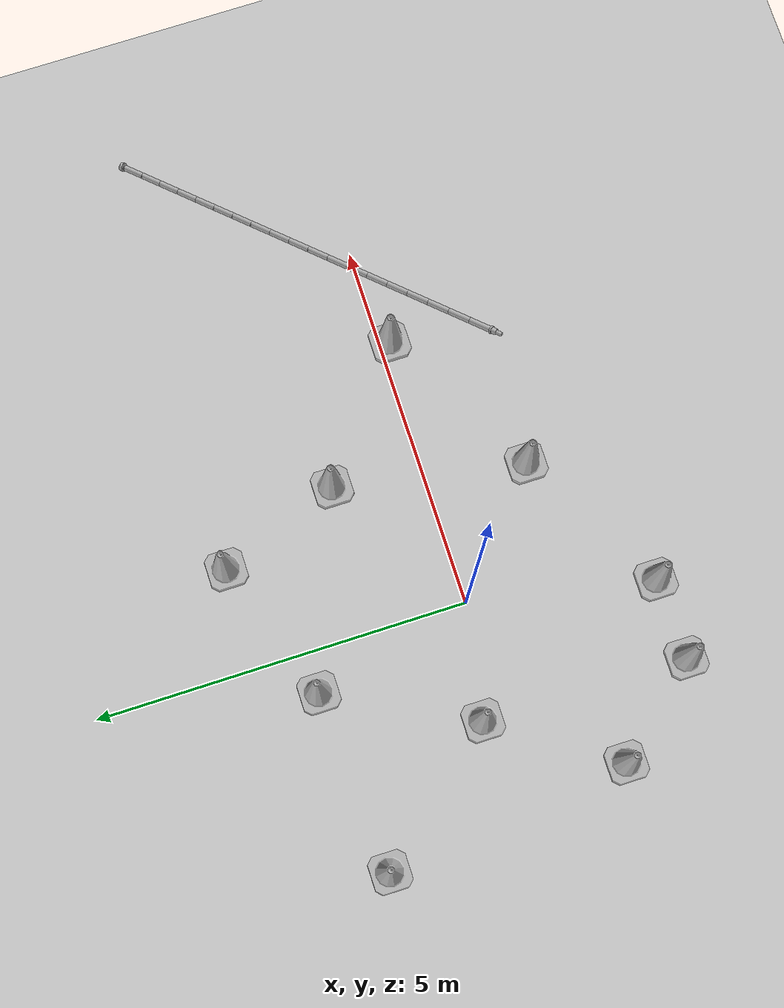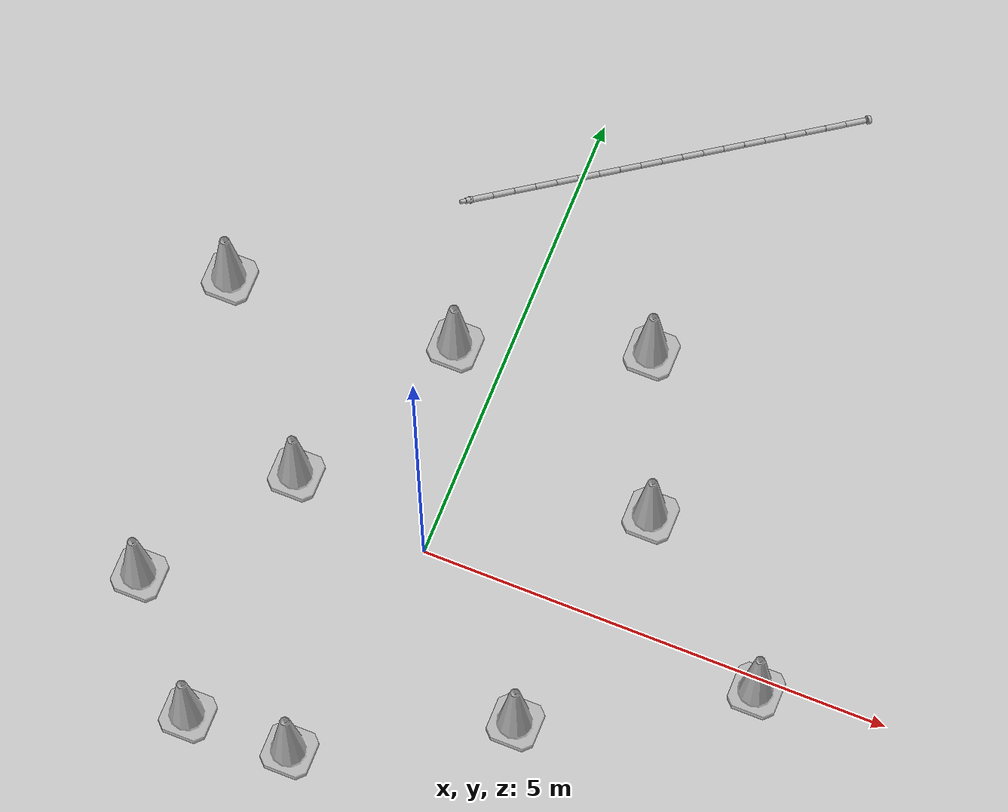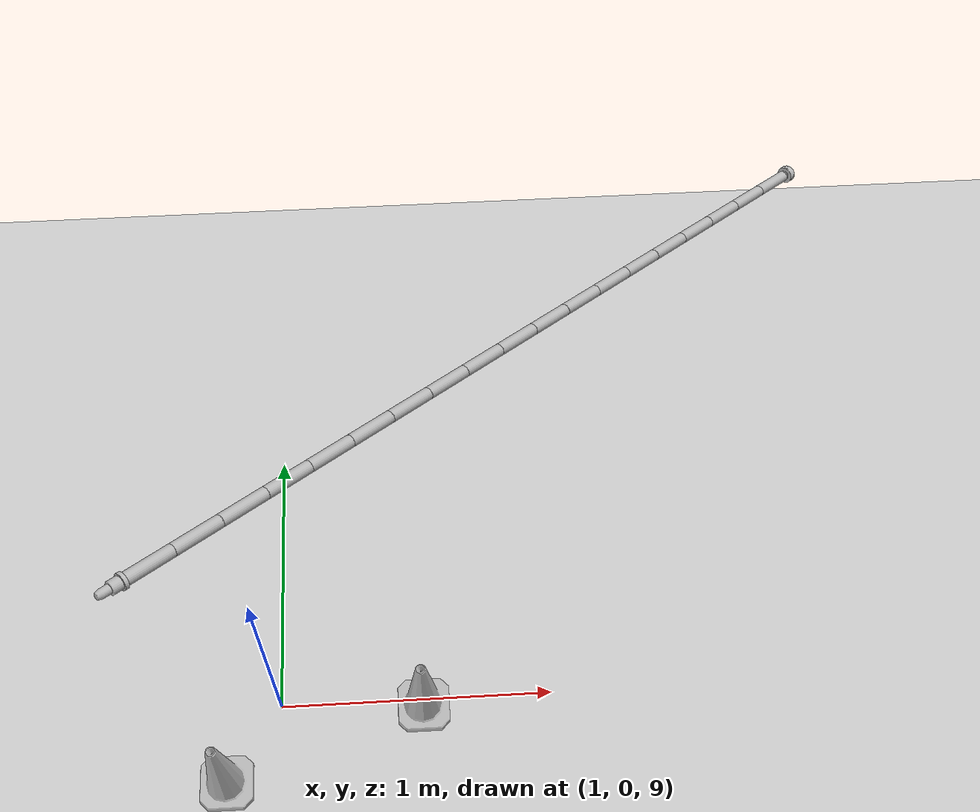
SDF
<sdf version="1.7">
 <world name="default">
  <light name="sun" type="directional">
   <pose>0 0 10 0 -0 0</pose>
   <diffuse>0.8 0.8 0.8 1</diffuse>
   <specular>0.2 0.2 0.2 1</specular>
   <attenuation>
    <range>1000</range>
    <constant>0.9</constant>
    <linear>0.01</linear>
    <quadratic>0.001</quadratic>
   </attenuation>
   <direction>-0.5 0.1 -0.9</direction>
   <spot><inner_angle>0</inner_angle><outer_angle>0</outer_angle><falloff>0</falloff></spot>
  </light>
  <model name="ground_plane">
   <static>1</static>
   <link name="link">
    <collision name="collision">
     <geometry><plane><normal>0 0 1</normal><size>100 100</size></plane></geometry>
     <surface>
      <contact><collide_bitmask>65535</collide_bitmask></contact>
      <friction><ode><mu>100</mu><mu2>50</mu2></ode></friction>
     </surface>
    </collision>
    <visual name="visual">
     <cast_shadows>0</cast_shadows>
     <geometry><plane><normal>0 0 1</normal><size>100 100</size></plane></geometry>
     <material>
      <script><uri>file://media/materials/scripts/gazebo.material</uri><name>Gazebo/Grey</name></script>
     </material>
    </visual>
   </link>
  </model>
  <gravity>0 0 -9.8</gravity>
  <magnetic_field>6e-06 2.3e-05 -4.2e-05</magnetic_field>
  <atmosphere type="adiabatic"/>
  <physics type="ode">
   <max_step_size>0.001</max_step_size>
   <real_time_factor>1</real_time_factor>
   <real_time_update_rate>1000</real_time_update_rate>
  </physics>
  <scene><ambient>0.4 0.4 0.4 1</ambient><background>0.7 0.7 0.7 1</background><shadows>1</shadows></scene>
  <spherical_coordinates>
   <surface_model>EARTH_WGS84</surface_model>
   <latitude_deg>0</latitude_deg>
   <longitude_deg>0</longitude_deg>
   <elevation>0</elevation>
   <heading_deg>0</heading_deg>
  </spherical_coordinates>
  <model name="fire_hose_long">
   <pose>0.523019 0.062878 10 1.23283 0.318678 0.720963</pose>
   <joint name="joint_01_world" type="revolute">
    <child>nozzle</child>
    <parent>world</parent>
    <axis>
     <xyz expressed_in="__model__">0.5 1 0.2</xyz>
     <dynamics>
      <damping>10</damping>
      <friction>0</friction>
      <spring_reference>0</spring_reference>
      <spring_stiffness>0</spring_stiffness>
     </dynamics>
     <limit><lower>-1e+16</lower><upper>1e+16</upper></limit>
    </axis>
   </joint>
   <link name="nozzle">
    <inertial>
     <mass>0.1</mass>
     <inertia><ixx>0.01</ixx><ixy>0</ixy><ixz>0</ixz><iyy>0.01</iyy><iyz>0</iyz><izz>0.01</izz></inertia>
    </inertial>
    <collision name="nozzle_collision">
     <geometry>
      <mesh><scale>0.00254 0.00254 0.00254</scale><uri>model://fire_hose_long/meshes/nozzle.stl</uri></mesh>
     </geometry>
    </collision>
    <visual name="nozzle_vis">
     <geometry>
      <mesh><scale>0.00254 0.00254 0.00254</scale><uri>model://fire_hose_long/meshes/nozzle.stl</uri></mesh>
     </geometry>
    </visual>
   </link>
   <link name="sphere_01">
    <gravity>0</gravity>
    <pose>0.1 0 0 0 -0 0</pose>
    <inertial>
     <mass>0.1</mass>
     <inertia><ixx>0.01</ixx><ixy>0</ixy><ixz>0</ixz><iyy>0.01</iyy><iyz>0</iyz><izz>0.01</izz></inertia>
    </inertial>
    <collision name="sphere_01_collision"><geometry><sphere><radius>0.025</radius></sphere></geometry></collision>
    <visual name="sphere_01_vis"><geometry><sphere><radius>0.025</radius></sphere></geometry></visual>
   </link>
   <joint name="joint_01_1" type="revolute">
    <child>sphere_01</child>
    <parent>nozzle</parent>
    <axis>
     <xyz expressed_in="__model__">0 0 1</xyz>
     <limit><lower>-0.7</lower><upper>0.7</upper></limit>
     <dynamics>
      <damping>10</damping>
      <friction>0</friction>
      <spring_reference>0</spring_reference>
      <spring_stiffness>0</spring_stiffness>
     </dynamics>
    </axis>
   </joint>
   <link name="link_01">
    <gravity>0</gravity>
    <pose>0.1 0 0 0 -0 0</pose>
    <inertial>
     <mass>0.1</mass>
     <inertia><ixx>0.01</ixx><ixy>0</ixy><ixz>0</ixz><iyy>0.01</iyy><iyz>0</iyz><izz>0.01</izz></inertia>
    </inertial>
    <collision name="link_01_collision">
     <pose>0.1 0 0 0 1.57079 0</pose>
     <geometry><cylinder><length>0.2</length><radius>0.025</radius></cylinder></geometry>
    </collision>
    <visual name="link_01_vis">
     <pose>0.1 0 0 0 1.57079 0</pose>
     <geometry><cylinder><length>0.2</length><radius>0.025</radius></cylinder></geometry>
    </visual>
   </link>
   <joint name="joint_01_2" type="revolute">
    <child>link_01</child>
    <parent>sphere_01</parent>
    <axis>
     <xyz expressed_in="__model__">0 1 0</xyz>
     <limit><lower>-0.7</lower><upper>0.7</upper></limit>
     <dynamics>
      <damping>10</damping>
      <friction>0</friction>
      <spring_reference>0</spring_reference>
      <spring_stiffness>0</spring_stiffness>
     </dynamics>
    </axis>
   </joint>
   <link name="sphere_02">
    <gravity>0</gravity>
    <pose>0.3 0 0 0 -0 0</pose>
    <inertial>
     <mass>0.1</mass>
     <inertia><ixx>0.01</ixx><ixy>0</ixy><ixz>0</ixz><iyy>0.01</iyy><iyz>0</iyz><izz>0.01</izz></inertia>
    </inertial>
    <collision name="sphere_02_collision"><geometry><sphere><radius>0.025</radius></sphere></geometry></collision>
    <visual name="sphere_02_vis"><geometry><sphere><radius>0.025</radius></sphere></geometry></visual>
   </link>
   <joint name="joint_02_1" type="revolute">
    <child>sphere_02</child>
    <parent>link_01</parent>
    <axis>
     <xyz expressed_in="__model__">0 0 1</xyz>
     <limit><lower>-0.7</lower><upper>0.7</upper></limit>
     <dynamics>
      <damping>10</damping>
      <friction>0</friction>
      <spring_reference>0</spring_reference>
      <spring_stiffness>0</spring_stiffness>
     </dynamics>
    </axis>
   </joint>
   <link name="link_02">
    <gravity>0</gravity>
    <pose>0.3 0 0 0 -0 0</pose>
    <inertial>
     <mass>0.1</mass>
     <inertia><ixx>0.01</ixx><ixy>0</ixy><ixz>0</ixz><iyy>0.01</iyy><iyz>0</iyz><izz>0.01</izz></inertia>
    </inertial>
    <collision name="link_02_collision">
     <pose>0.1 0 0 0 1.57079 0</pose>
     <geometry><cylinder><length>0.2</length><radius>0.025</radius></cylinder></geometry>
    </collision>
    <visual name="link_02_vis">
     <pose>0.1 0 0 0 1.57079 0</pose>
     <geometry><cylinder><length>0.2</length><radius>0.025</radius></cylinder></geometry>
    </visual>
   </link>
   <joint name="joint_02_2" type="revolute">
    <child>link_02</child>
    <parent>sphere_02</parent>
    <axis>
     <xyz expressed_in="__model__">0 1 0</xyz>
     <limit><lower>-0.7</lower><upper>0.7</upper></limit>
     <dynamics>
      <damping>10</damping>
      <friction>0</friction>
      <spring_reference>0</spring_reference>
      <spring_stiffness>0</spring_stiffness>
     </dynamics>
    </axis>
   </joint>
   <link name="sphere_03">
    <gravity>0</gravity>
    <pose>0.5 0 0 0 -0 0</pose>
    <inertial>
     <mass>0.1</mass>
     <inertia><ixx>0.01</ixx><ixy>0</ixy><ixz>0</ixz><iyy>0.01</iyy><iyz>0</iyz><izz>0.01</izz></inertia>
    </inertial>
    <collision name="sphere_03_collision"><geometry><sphere><radius>0.025</radius></sphere></geometry></collision>
    <visual name="sphere_03_vis"><geometry><sphere><radius>0.025</radius></sphere></geometry></visual>
   </link>
   <joint name="joint_03_1" type="revolute">
    <child>sphere_03</child>
    <parent>link_02</parent>
    <axis>
     <xyz expressed_in="__model__">0 0 1</xyz>
     <limit><lower>-0.7</lower><upper>0.7</upper></limit>
     <dynamics>
      <damping>10</damping>
      <friction>0</friction>
      <spring_reference>0</spring_reference>
      <spring_stiffness>0</spring_stiffness>
     </dynamics>
    </axis>
   </joint>
   <link name="link_03">
    <gravity>0</gravity>
    <pose>0.5 0 0 0 -0 0</pose>
    <inertial>
     <mass>0.1</mass>
     <inertia><ixx>0.01</ixx><ixy>0</ixy><ixz>0</ixz><iyy>0.01</iyy><iyz>0</iyz><izz>0.01</izz></inertia>
    </inertial>
    <collision name="link_03_collision">
     <pose>0.1 0 0 0 1.57079 0</pose>
     <geometry><cylinder><length>0.2</length><radius>0.025</radius></cylinder></geometry>
    </collision>
    <visual name="link_03_vis">
     <pose>0.1 0 0 0 1.57079 0</pose>
     <geometry><cylinder><length>0.2</length><radius>0.025</radius></cylinder></geometry>
    </visual>
   </link>
   <joint name="joint_03_2" type="revolute">
    <child>link_03</child>
    <parent>sphere_03</parent>
    <axis>
     <xyz expressed_in="__model__">0 1 0</xyz>
     <limit><lower>-0.7</lower><upper>0.7</upper></limit>
     <dynamics>
      <damping>10</damping>
      <friction>0</friction>
      <spring_reference>0</spring_reference>
      <spring_stiffness>0</spring_stiffness>
     </dynamics>
    </axis>
   </joint>
   <link name="sphere_04">
    <gravity>0</gravity>
    <pose>0.7 0 0 0 -0 0</pose>
    <inertial>
     <mass>0.1</mass>
     <inertia><ixx>0.01</ixx><ixy>0</ixy><ixz>0</ixz><iyy>0.01</iyy><iyz>0</iyz><izz>0.01</izz></inertia>
    </inertial>
    <collision name="sphere_04_collision"><geometry><sphere><radius>0.025</radius></sphere></geometry></collision>
    <visual name="sphere_04_vis"><geometry><sphere><radius>0.025</radius></sphere></geometry></visual>
   </link>
   <joint name="joint_04_1" type="revolute">
    <child>sphere_04</child>
    <parent>link_03</parent>
    <axis>
     <xyz expressed_in="__model__">0 0 1</xyz>
     <limit><lower>-0.7</lower><upper>0.7</upper></limit>
     <dynamics>
      <damping>10</damping>
      <friction>0</friction>
      <spring_reference>0</spring_reference>
      <spring_stiffness>0</spring_stiffness>
     </dynamics>
    </axis>
   </joint>
   <link name="link_04">
    <gravity>0</gravity>
    <pose>0.7 0 0 0 -0 0</pose>
    <inertial>
     <mass>0.1</mass>
     <inertia><ixx>0.01</ixx><ixy>0</ixy><ixz>0</ixz><iyy>0.01</iyy><iyz>0</iyz><izz>0.01</izz></inertia>
    </inertial>
    <collision name="link_04_collision">
     <pose>0.1 0 0 0 1.57079 0</pose>
     <geometry><cylinder><length>0.2</length><radius>0.025</radius></cylinder></geometry>
    </collision>
    <visual name="link_04_vis">
     <pose>0.1 0 0 0 1.57079 0</pose>
     <geometry><cylinder><length>0.2</length><radius>0.025</radius></cylinder></geometry>
    </visual>
   </link>
   <joint name="joint_04_2" type="revolute">
    <child>link_04</child>
    <parent>sphere_04</parent>
    <axis>
     <xyz expressed_in="__model__">0 1 0</xyz>
     <limit><lower>-0.7</lower><upper>0.7</upper></limit>
     <dynamics>
      <damping>10</damping>
      <friction>0</friction>
      <spring_reference>0</spring_reference>
      <spring_stiffness>0</spring_stiffness>
     </dynamics>
    </axis>
   </joint>
   <link name="sphere_05">
    <gravity>0</gravity>
    <pose>0.9 0 0 0 -0 0</pose>
    <inertial>
     <mass>0.1</mass>
     <inertia><ixx>0.01</ixx><ixy>0</ixy><ixz>0</ixz><iyy>0.01</iyy><iyz>0</iyz><izz>0.01</izz></inertia>
    </inertial>
    <collision name="sphere_05_collision"><geometry><sphere><radius>0.025</radius></sphere></geometry></collision>
    <visual name="sphere_05_vis"><geometry><sphere><radius>0.025</radius></sphere></geometry></visual>
   </link>
   <joint name="joint_05_1" type="revolute">
    <child>sphere_05</child>
    <parent>link_04</parent>
    <axis>
     <xyz expressed_in="__model__">0 0 1</xyz>
     <limit><lower>-0.7</lower><upper>0.7</upper></limit>
     <dynamics>
      <damping>10</damping>
      <friction>0</friction>
      <spring_reference>0</spring_reference>
      <spring_stiffness>0</spring_stiffness>
     </dynamics>
    </axis>
   </joint>
   <link name="link_05">
    <gravity>0</gravity>
    <pose>0.9 0 0 0 -0 0</pose>
    <inertial>
     <mass>0.1</mass>
     <inertia><ixx>0.01</ixx><ixy>0</ixy><ixz>0</ixz><iyy>0.01</iyy><iyz>0</iyz><izz>0.01</izz></inertia>
    </inertial>
    <collision name="link_05_collision">
     <pose>0.1 0 0 0 1.57079 0</pose>
     <geometry><cylinder><length>0.2</length><radius>0.025</radius></cylinder></geometry>
    </collision>
    <visual name="link_05_vis">
     <pose>0.1 0 0 0 1.57079 0</pose>
     <geometry><cylinder><length>0.2</length><radius>0.025</radius></cylinder></geometry>
    </visual>
   </link>
   <joint name="joint_05_2" type="revolute">
    <child>link_05</child>
    <parent>sphere_05</parent>
    <axis>
     <xyz expressed_in="__model__">0 1 0</xyz>
     <limit><lower>-0.7</lower><upper>0.7</upper></limit>
     <dynamics>
      <damping>10</damping>
      <friction>0</friction>
      <spring_reference>0</spring_reference>
      <spring_stiffness>0</spring_stiffness>
     </dynamics>
    </axis>
   </joint>
   <link name="sphere_06">
    <gravity>0</gravity>
    <pose>1.1 0 0 0 -0 0</pose>
    <inertial>
     <mass>0.1</mass>
     <inertia><ixx>0.01</ixx><ixy>0</ixy><ixz>0</ixz><iyy>0.01</iyy><iyz>0</iyz><izz>0.01</izz></inertia>
    </inertial>
    <collision name="sphere_06_collision"><geometry><sphere><radius>0.025</radius></sphere></geometry></collision>
    <visual name="sphere_06_vis"><geometry><sphere><radius>0.025</radius></sphere></geometry></visual>
   </link>
   <joint name="joint_06_1" type="revolute">
    <child>sphere_06</child>
    <parent>link_05</parent>
    <axis>
     <xyz expressed_in="__model__">0 0 1</xyz>
     <limit><lower>-0.7</lower><upper>0.7</upper></limit>
     <dynamics>
      <damping>10</damping>
      <friction>0</friction>
      <spring_reference>0</spring_reference>
      <spring_stiffness>0</spring_stiffness>
     </dynamics>
    </axis>
   </joint>
   <link name="link_06">
    <gravity>0</gravity>
    <pose>1.1 0 0 0 -0 0</pose>
    <inertial>
     <mass>0.1</mass>
     <inertia><ixx>0.01</ixx><ixy>0</ixy><ixz>0</ixz><iyy>0.01</iyy><iyz>0</iyz><izz>0.01</izz></inertia>
    </inertial>
    <collision name="link_06_collision">
     <pose>0.1 0 0 0 1.57079 0</pose>
     <geometry><cylinder><length>0.2</length><radius>0.025</radius></cylinder></geometry>
    </collision>
    <visual name="link_06_vis">
     <pose>0.1 0 0 0 1.57079 0</pose>
     <geometry><cylinder><length>0.2</length><radius>0.025</radius></cylinder></geometry>
    </visual>
   </link>
   <joint name="joint_06_2" type="revolute">
    <child>link_06</child>
    <parent>sphere_06</parent>
    <axis>
     <xyz expressed_in="__model__">0 1 0</xyz>
     <limit><lower>-0.7</lower><upper>0.7</upper></limit>
     <dynamics>
      <damping>10</damping>
      <friction>0</friction>
      <spring_reference>0</spring_reference>
      <spring_stiffness>0</spring_stiffness>
     </dynamics>
    </axis>
   </joint>
   <link name="sphere_07">
    <gravity>0</gravity>
    <pose>1.3 0 0 0 -0 0</pose>
    <inertial>
     <mass>0.1</mass>
     <inertia><ixx>0.01</ixx><ixy>0</ixy><ixz>0</ixz><iyy>0.01</iyy><iyz>0</iyz><izz>0.01</izz></inertia>
    </inertial>
    <collision name="sphere_07_collision"><geometry><sphere><radius>0.025</radius></sphere></geometry></collision>
    <visual name="sphere_07_vis"><geometry><sphere><radius>0.025</radius></sphere></geometry></visual>
   </link>
   <joint name="joint_07_1" type="revolute">
    <child>sphere_07</child>
    <parent>link_06</parent>
    <axis>
     <xyz expressed_in="__model__">0 0 1</xyz>
     <limit><lower>-0.7</lower><upper>0.7</upper></limit>
     <dynamics>
      <damping>10</damping>
      <friction>0</friction>
      <spring_reference>0</spring_reference>
      <spring_stiffness>0</spring_stiffness>
     </dynamics>
    </axis>
   </joint>
   <link name="link_07">
    <gravity>0</gravity>
    <pose>1.3 0 0 0 -0 0</pose>
    <inertial>
     <mass>0.1</mass>
     <inertia><ixx>0.01</ixx><ixy>0</ixy><ixz>0</ixz><iyy>0.01</iyy><iyz>0</iyz><izz>0.01</izz></inertia>
    </inertial>
    <collision name="link_07_collision">
     <pose>0.1 0 0 0 1.57079 0</pose>
     <geometry><cylinder><length>0.2</length><radius>0.025</radius></cylinder></geometry>
    </collision>
    <visual name="link_07_vis">
     <pose>0.1 0 0 0 1.57079 0</pose>
     <geometry><cylinder><length>0.2</length><radius>0.025</radius></cylinder></geometry>
    </visual>
   </link>
   <joint name="joint_07_2" type="revolute">
    <child>link_07</child>
    <parent>sphere_07</parent>
    <axis>
     <xyz expressed_in="__model__">0 1 0</xyz>
     <limit><lower>-0.7</lower><upper>0.7</upper></limit>
     <dynamics>
      <damping>10</damping>
      <friction>0</friction>
      <spring_reference>0</spring_reference>
      <spring_stiffness>0</spring_stiffness>
     </dynamics>
    </axis>
   </joint>
   <link name="sphere_08">
    <gravity>0</gravity>
    <pose>1.5 0 0 0 -0 0</pose>
    <inertial>
     <mass>0.1</mass>
     <inertia><ixx>0.01</ixx><ixy>0</ixy><ixz>0</ixz><iyy>0.01</iyy><iyz>0</iyz><izz>0.01</izz></inertia>
    </inertial>
    <collision name="sphere_08_collision"><geometry><sphere><radius>0.025</radius></sphere></geometry></collision>
    <visual name="sphere_08_vis"><geometry><sphere><radius>0.025</radius></sphere></geometry></visual>
   </link>
   <joint name="joint_08_1" type="revolute">
    <child>sphere_08</child>
    <parent>link_07</parent>
    <axis>
     <xyz expressed_in="__model__">0 0 1</xyz>
     <limit><lower>-0.7</lower><upper>0.7</upper></limit>
     <dynamics>
      <damping>10</damping>
      <friction>0</friction>
      <spring_reference>0</spring_reference>
      <spring_stiffness>0</spring_stiffness>
     </dynamics>
    </axis>
   </joint>
   <link name="link_08">
    <gravity>0</gravity>
    <pose>1.5 0 0 0 -0 0</pose>
    <inertial>
     <mass>0.1</mass>
     <inertia><ixx>0.01</ixx><ixy>0</ixy><ixz>0</ixz><iyy>0.01</iyy><iyz>0</iyz><izz>0.01</izz></inertia>
    </inertial>
    <collision name="link_08_collision">
     <pose>0.1 0 0 0 1.57079 0</pose>
     <geometry><cylinder><length>0.2</length><radius>0.025</radius></cylinder></geometry>
    </collision>
    <visual name="link_08_vis">
     <pose>0.1 0 0 0 1.57079 0</pose>
     <geometry><cylinder><length>0.2</length><radius>0.025</radius></cylinder></geometry>
    </visual>
   </link>
   <joint name="joint_08_2" type="revolute">
    <child>link_08</child>
    <parent>sphere_08</parent>
    <axis>
     <xyz expressed_in="__model__">0 1 0</xyz>
     <limit><lower>-0.7</lower><upper>0.7</upper></limit>
     <dynamics>
      <damping>10</damping>
      <friction>0</friction>
      <spring_reference>0</spring_reference>
      <spring_stiffness>0</spring_stiffness>
     </dynamics>
    </axis>
   </joint>
   <link name="sphere_09">
    <gravity>0</gravity>
    <pose>1.7 0 0 0 -0 0</pose>
    <inertial>
     <mass>0.1</mass>
     <inertia><ixx>0.01</ixx><ixy>0</ixy><ixz>0</ixz><iyy>0.01</iyy><iyz>0</iyz><izz>0.01</izz></inertia>
    </inertial>
    <collision name="sphere_09_collision"><geometry><sphere><radius>0.025</radius></sphere></geometry></collision>
    <visual name="sphere_09_vis"><geometry><sphere><radius>0.025</radius></sphere></geometry></visual>
   </link>
   <joint name="joint_09_1" type="revolute">
    <child>sphere_09</child>
    <parent>link_08</parent>
    <axis>
     <xyz expressed_in="__model__">0 0 1</xyz>
     <limit><lower>-0.7</lower><upper>0.7</upper></limit>
     <dynamics>
      <damping>10</damping>
      <friction>0</friction>
      <spring_reference>0</spring_reference>
      <spring_stiffness>0</spring_stiffness>
     </dynamics>
    </axis>
   </joint>
   <link name="link_09">
    <gravity>0</gravity>
    <pose>1.7 0 0 0 -0 0</pose>
    <inertial>
     <mass>0.1</mass>
     <inertia><ixx>0.01</ixx><ixy>0</ixy><ixz>0</ixz><iyy>0.01</iyy><iyz>0</iyz><izz>0.01</izz></inertia>
    </inertial>
    <collision name="link_09_collision">
     <pose>0.1 0 0 0 1.57079 0</pose>
     <geometry><cylinder><length>0.2</length><radius>0.025</radius></cylinder></geometry>
    </collision>
    <visual name="link_09_vis">
     <pose>0.1 0 0 0 1.57079 0</pose>
     <geometry><cylinder><length>0.2</length><radius>0.025</radius></cylinder></geometry>
    </visual>
   </link>
   <joint name="joint_09_2" type="revolute">
    <child>link_09</child>
    <parent>sphere_09</parent>
    <axis>
     <xyz expressed_in="__model__">0 1 0</xyz>
     <limit><lower>-0.7</lower><upper>0.7</upper></limit>
     <dynamics>
      <damping>10</damping>
      <friction>0</friction>
      <spring_reference>0</spring_reference>
      <spring_stiffness>0</spring_stiffness>
     </dynamics>
    </axis>
   </joint>
   <link name="sphere_10">
    <gravity>0</gravity>
    <pose>1.9 0 0 0 -0 0</pose>
    <inertial>
     <mass>0.1</mass>
     <inertia><ixx>0.01</ixx><ixy>0</ixy><ixz>0</ixz><iyy>0.01</iyy><iyz>0</iyz><izz>0.01</izz></inertia>
    </inertial>
    <collision name="sphere_10_collision"><geometry><sphere><radius>0.025</radius></sphere></geometry></collision>
    <visual name="sphere_10_vis"><geometry><sphere><radius>0.025</radius></sphere></geometry></visual>
   </link>
   <joint name="joint_10_1" type="revolute">
    <child>sphere_10</child>
    <parent>link_09</parent>
    <axis>
     <xyz expressed_in="__model__">0 0 1</xyz>
     <limit><lower>-0.7</lower><upper>0.7</upper></limit>
     <dynamics>
      <damping>10</damping>
      <friction>0</friction>
      <spring_reference>0</spring_reference>
      <spring_stiffness>0</spring_stiffness>
     </dynamics>
    </axis>
   </joint>
   <link name="link_10">
    <gravity>0</gravity>
    <pose>1.9 0 0 0 -0 0</pose>
    <inertial>
     <mass>0.1</mass>
     <inertia><ixx>0.01</ixx><ixy>0</ixy><ixz>0</ixz><iyy>0.01</iyy><iyz>0</iyz><izz>0.01</izz></inertia>
    </inertial>
    <collision name="link_10_collision">
     <pose>0.1 0 0 0 1.57079 0</pose>
     <geometry><cylinder><length>0.2</length><radius>0.025</radius></cylinder></geometry>
    </collision>
    <visual name="link_10_vis">
     <pose>0.1 0 0 0 1.57079 0</pose>
     <geometry><cylinder><length>0.2</length><radius>0.025</radius></cylinder></geometry>
    </visual>
   </link>
   <joint name="joint_10_2" type="revolute">
    <child>link_10</child>
    <parent>sphere_10</parent>
    <axis>
     <xyz expressed_in="__model__">0 1 0</xyz>
     <limit><lower>-0.7</lower><upper>0.7</upper></limit>
     <dynamics>
      <damping>10</damping>
      <friction>0</friction>
      <spring_reference>0</spring_reference>
      <spring_stiffness>0</spring_stiffness>
     </dynamics>
    </axis>
   </joint>
   <link name="sphere_11">
    <gravity>0</gravity>
    <pose>2.1 0 0 0 -0 0</pose>
    <inertial>
     <mass>0.1</mass>
     <inertia><ixx>0.01</ixx><ixy>0</ixy><ixz>0</ixz><iyy>0.01</iyy><iyz>0</iyz><izz>0.01</izz></inertia>
    </inertial>
    <collision name="sphere_11_collision"><geometry><sphere><radius>0.025</radius></sphere></geometry></collision>
    <visual name="sphere_11_vis"><geometry><sphere><radius>0.025</radius></sphere></geometry></visual>
   </link>
   <joint name="joint_11_1" type="revolute">
    <child>sphere_11</child>
    <parent>link_10</parent>
    <axis>
     <xyz expressed_in="__model__">0 0 1</xyz>
     <limit><lower>-0.7</lower><upper>0.7</upper></limit>
     <dynamics>
      <damping>10</damping>
      <friction>0</friction>
      <spring_reference>0</spring_reference>
      <spring_stiffness>0</spring_stiffness>
     </dynamics>
    </axis>
   </joint>
   <link name="link_11">
    <gravity>0</gravity>
    <pose>2.1 0 0 0 -0 0</pose>
    <inertial>
     <mass>0.1</mass>
     <inertia><ixx>0.01</ixx><ixy>0</ixy><ixz>0</ixz><iyy>0.01</iyy><iyz>0</iyz><izz>0.01</izz></inertia>
    </inertial>
    <collision name="link_11_collision">
     <pose>0.1 0 0 0 1.57079 0</pose>
     <geometry><cylinder><length>0.2</length><radius>0.025</radius></cylinder></geometry>
    </collision>
    <visual name="link_11_vis">
     <pose>0.1 0 0 0 1.57079 0</pose>
     <geometry><cylinder><length>0.2</length><radius>0.025</radius></cylinder></geometry>
    </visual>
   </link>
   <joint name="joint_11_2" type="revolute">
    <child>link_11</child>
    <parent>sphere_11</parent>
    <axis>
     <xyz expressed_in="__model__">0 1 0</xyz>
     <limit><lower>-0.7</lower><upper>0.7</upper></limit>
     <dynamics>
      <damping>10</damping>
      <friction>0</friction>
      <spring_reference>0</spring_reference>
      <spring_stiffness>0</spring_stiffness>
     </dynamics>
    </axis>
   </joint>
   <link name="sphere_12">
    <gravity>0</gravity>
    <pose>2.3 0 0 0 -0 0</pose>
    <inertial>
     <mass>0.1</mass>
     <inertia><ixx>0.01</ixx><ixy>0</ixy><ixz>0</ixz><iyy>0.01</iyy><iyz>0</iyz><izz>0.01</izz></inertia>
    </inertial>
    <collision name="sphere_12_collision"><geometry><sphere><radius>0.025</radius></sphere></geometry></collision>
    <visual name="sphere_12_vis"><geometry><sphere><radius>0.025</radius></sphere></geometry></visual>
   </link>
   <joint name="joint_12_1" type="revolute">
    <child>sphere_12</child>
    <parent>link_11</parent>
    <axis>
     <xyz expressed_in="__model__">0 0 1</xyz>
     <limit><lower>-0.7</lower><upper>0.7</upper></limit>
     <dynamics>
      <damping>10</damping>
      <friction>0</friction>
      <spring_reference>0</spring_reference>
      <spring_stiffness>0</spring_stiffness>
     </dynamics>
    </axis>
   </joint>
   <link name="link_12">
    <gravity>0</gravity>
    <pose>2.3 0 0 0 -0 0</pose>
    <inertial>
     <mass>0.1</mass>
     <inertia><ixx>0.01</ixx><ixy>0</ixy><ixz>0</ixz><iyy>0.01</iyy><iyz>0</iyz><izz>0.01</izz></inertia>
    </inertial>
    <collision name="link_12_collision">
     <pose>0.1 0 0 0 1.57079 0</pose>
     <geometry><cylinder><length>0.2</length><radius>0.025</radius></cylinder></geometry>
    </collision>
    <visual name="link_12_vis">
     <pose>0.1 0 0 0 1.57079 0</pose>
     <geometry><cylinder><length>0.2</length><radius>0.025</radius></cylinder></geometry>
    </visual>
   </link>
   <joint name="joint_12_2" type="revolute">
    <child>link_12</child>
    <parent>sphere_12</parent>
    <axis>
     <xyz expressed_in="__model__">0 1 0</xyz>
     <limit><lower>-0.7</lower><upper>0.7</upper></limit>
     <dynamics>
      <damping>10</damping>
      <friction>0</friction>
      <spring_reference>0</spring_reference>
      <spring_stiffness>0</spring_stiffness>
     </dynamics>
    </axis>
   </joint>
   <link name="sphere_13">
    <gravity>0</gravity>
    <pose>2.5 0 0 0 -0 0</pose>
    <inertial>
     <mass>0.1</mass>
     <inertia><ixx>0.01</ixx><ixy>0</ixy><ixz>0</ixz><iyy>0.01</iyy><iyz>0</iyz><izz>0.01</izz></inertia>
    </inertial>
    <collision name="sphere_13_collision"><geometry><sphere><radius>0.025</radius></sphere></geometry></collision>
    <visual name="sphere_13_vis"><geometry><sphere><radius>0.025</radius></sphere></geometry></visual>
   </link>
   <joint name="joint_13_1" type="revolute">
    <child>sphere_13</child>
    <parent>link_12</parent>
    <axis>
     <xyz expressed_in="__model__">0 0 1</xyz>
     <limit><lower>-0.7</lower><upper>0.7</upper></limit>
     <dynamics>
      <damping>10</damping>
      <friction>0</friction>
      <spring_reference>0</spring_reference>
      <spring_stiffness>0</spring_stiffness>
     </dynamics>
    </axis>
   </joint>
   <link name="link_13">
    <gravity>0</gravity>
    <pose>2.5 0 0 0 -0 0</pose>
    <inertial>
     <mass>0.1</mass>
     <inertia><ixx>0.01</ixx><ixy>0</ixy><ixz>0</ixz><iyy>0.01</iyy><iyz>0</iyz><izz>0.01</izz></inertia>
    </inertial>
    <collision name="link_13_collision">
     <pose>0.1 0 0 0 1.57079 0</pose>
     <geometry><cylinder><length>0.2</length><radius>0.025</radius></cylinder></geometry>
    </collision>
    <visual name="link_13_vis">
     <pose>0.1 0 0 0 1.57079 0</pose>
     <geometry><cylinder><length>0.2</length><radius>0.025</radius></cylinder></geometry>
    </visual>
   </link>
   <joint name="joint_13_2" type="revolute">
    <child>link_13</child>
    <parent>sphere_13</parent>
    <axis>
     <xyz expressed_in="__model__">0 1 0</xyz>
     <limit><lower>-0.7</lower><upper>0.7</upper></limit>
     <dynamics>
      <damping>10</damping>
      <friction>0</friction>
      <spring_reference>0</spring_reference>
      <spring_stiffness>0</spring_stiffness>
     </dynamics>
    </axis>
   </joint>
   <link name="sphere_14">
    <gravity>0</gravity>
    <pose>2.7 0 0 0 -0 0</pose>
    <inertial>
     <mass>0.1</mass>
     <inertia><ixx>0.01</ixx><ixy>0</ixy><ixz>0</ixz><iyy>0.01</iyy><iyz>0</iyz><izz>0.01</izz></inertia>
    </inertial>
    <collision name="sphere_14_collision"><geometry><sphere><radius>0.025</radius></sphere></geometry></collision>
    <visual name="sphere_14_vis"><geometry><sphere><radius>0.025</radius></sphere></geometry></visual>
   </link>
   <joint name="joint_14_1" type="revolute">
    <child>sphere_14</child>
    <parent>link_13</parent>
    <axis>
     <xyz expressed_in="__model__">0 0 1</xyz>
     <limit><lower>-0.7</lower><upper>0.7</upper></limit>
     <dynamics>
      <damping>10</damping>
      <friction>0</friction>
      <spring_reference>0</spring_reference>
      <spring_stiffness>0</spring_stiffness>
     </dynamics>
    </axis>
   </joint>
   <link name="link_14">
    <gravity>0</gravity>
    <pose>2.7 0 0 0 -0 0</pose>
    <inertial>
     <mass>0.1</mass>
     <inertia><ixx>0.01</ixx><ixy>0</ixy><ixz>0</ixz><iyy>0.01</iyy><iyz>0</iyz><izz>0.01</izz></inertia>
    </inertial>
    <collision name="link_14_collision">
     <pose>0.1 0 0 0 1.57079 0</pose>
     <geometry><cylinder><length>0.2</length><radius>0.025</radius></cylinder></geometry>
    </collision>
    <visual name="link_14_vis">
     <pose>0.1 0 0 0 1.57079 0</pose>
     <geometry><cylinder><length>0.2</length><radius>0.025</radius></cylinder></geometry>
    </visual>
   </link>
   <joint name="joint_14_2" type="revolute">
    <child>link_14</child>
    <parent>sphere_14</parent>
    <axis>
     <xyz expressed_in="__model__">0 1 0</xyz>
     <limit><lower>-0.7</lower><upper>0.7</upper></limit>
     <dynamics>
      <damping>10</damping>
      <friction>0</friction>
      <spring_reference>0</spring_reference>
      <spring_stiffness>0</spring_stiffness>
     </dynamics>
    </axis>
   </joint>
   <link name="sphere_15">
    <gravity>0</gravity>
    <pose>2.9 0 0 0 -0 0</pose>
    <inertial>
     <mass>0.1</mass>
     <inertia><ixx>0.01</ixx><ixy>0</ixy><ixz>0</ixz><iyy>0.01</iyy><iyz>0</iyz><izz>0.01</izz></inertia>
    </inertial>
    <collision name="sphere_15_collision"><geometry><sphere><radius>0.025</radius></sphere></geometry></collision>
    <visual name="sphere_15_vis"><geometry><sphere><radius>0.025</radius></sphere></geometry></visual>
   </link>
   <joint name="joint_15_1" type="revolute">
    <child>sphere_15</child>
    <parent>link_14</parent>
    <axis>
     <xyz expressed_in="__model__">0 0 1</xyz>
     <limit><lower>-0.7</lower><upper>0.7</upper></limit>
     <dynamics>
      <damping>10</damping>
      <friction>0</friction>
      <spring_reference>0</spring_reference>
      <spring_stiffness>0</spring_stiffness>
     </dynamics>
    </axis>
   </joint>
   <link name="link_15">
    <gravity>0</gravity>
    <pose>2.9 0 0 0 -0 0</pose>
    <inertial>
     <mass>0.1</mass>
     <inertia><ixx>0.01</ixx><ixy>0</ixy><ixz>0</ixz><iyy>0.01</iyy><iyz>0</iyz><izz>0.01</izz></inertia>
    </inertial>
    <collision name="link_15_collision">
     <pose>0.1 0 0 0 1.57079 0</pose>
     <geometry><cylinder><length>0.2</length><radius>0.025</radius></cylinder></geometry>
    </collision>
    <visual name="link_15_vis">
     <pose>0.1 0 0 0 1.57079 0</pose>
     <geometry><cylinder><length>0.2</length><radius>0.025</radius></cylinder></geometry>
    </visual>
   </link>
   <joint name="joint_15_2" type="revolute">
    <child>link_15</child>
    <parent>sphere_15</parent>
    <axis>
     <xyz expressed_in="__model__">0 1 0</xyz>
     <limit><lower>-0.7</lower><upper>0.7</upper></limit>
     <dynamics>
      <damping>10</damping>
      <friction>0</friction>
      <spring_reference>0</spring_reference>
      <spring_stiffness>0</spring_stiffness>
     </dynamics>
    </axis>
   </joint>
   <link name="sphere_16">
    <gravity>0</gravity>
    <pose>3.1 0 0 0 -0 0</pose>
    <inertial>
     <mass>0.1</mass>
     <inertia><ixx>0.01</ixx><ixy>0</ixy><ixz>0</ixz><iyy>0.01</iyy><iyz>0</iyz><izz>0.01</izz></inertia>
    </inertial>
    <collision name="sphere_16_collision"><geometry><sphere><radius>0.025</radius></sphere></geometry></collision>
    <visual name="sphere_16_vis"><geometry><sphere><radius>0.025</radius></sphere></geometry></visual>
   </link>
   <joint name="joint_16_1" type="revolute">
    <child>sphere_16</child>
    <parent>link_15</parent>
    <axis>
     <xyz expressed_in="__model__">0 0 1</xyz>
     <limit><lower>-0.7</lower><upper>0.7</upper></limit>
     <dynamics>
      <damping>10</damping>
      <friction>0</friction>
      <spring_reference>0</spring_reference>
      <spring_stiffness>0</spring_stiffness>
     </dynamics>
    </axis>
   </joint>
   <link name="link_16">
    <gravity>0</gravity>
    <pose>3.1 0 0 0 -0 0</pose>
    <inertial>
     <mass>0.1</mass>
     <inertia><ixx>0.01</ixx><ixy>0</ixy><ixz>0</ixz><iyy>0.01</iyy><iyz>0</iyz><izz>0.01</izz></inertia>
    </inertial>
    <collision name="link_16_collision">
     <pose>0.1 0 0 0 1.57079 0</pose>
     <geometry><cylinder><length>0.2</length><radius>0.025</radius></cylinder></geometry>
    </collision>
    <visual name="link_16_vis">
     <pose>0.1 0 0 0 1.57079 0</pose>
     <geometry><cylinder><length>0.2</length><radius>0.025</radius></cylinder></geometry>
    </visual>
   </link>
   <joint name="joint_16_2" type="revolute">
    <child>link_16</child>
    <parent>sphere_16</parent>
    <axis>
     <xyz expressed_in="__model__">0 1 0</xyz>
     <limit><lower>-0.7</lower><upper>0.7</upper></limit>
     <dynamics>
      <damping>10</damping>
      <friction>0</friction>
      <spring_reference>0</spring_reference>
      <spring_stiffness>0</spring_stiffness>
     </dynamics>
    </axis>
   </joint>
   <link name="sphere_17">
    <gravity>0</gravity>
    <pose>3.3 0 0 0 -0 0</pose>
    <inertial>
     <mass>0.1</mass>
     <inertia><ixx>0.01</ixx><ixy>0</ixy><ixz>0</ixz><iyy>0.01</iyy><iyz>0</iyz><izz>0.01</izz></inertia>
    </inertial>
    <collision name="sphere_17_collision"><geometry><sphere><radius>0.025</radius></sphere></geometry></collision>
    <visual name="sphere_17_vis"><geometry><sphere><radius>0.025</radius></sphere></geometry></visual>
   </link>
   <joint name="joint_17_1" type="revolute">
    <child>sphere_17</child>
    <parent>link_16</parent>
    <axis>
     <xyz expressed_in="__model__">0 0 1</xyz>
     <limit><lower>-0.7</lower><upper>0.7</upper></limit>
     <dynamics>
      <damping>10</damping>
      <friction>0</friction>
      <spring_reference>0</spring_reference>
      <spring_stiffness>0</spring_stiffness>
     </dynamics>
    </axis>
   </joint>
   <link name="link_17">
    <gravity>0</gravity>
    <pose>3.3 0 0 0 -0 0</pose>
    <inertial>
     <mass>0.1</mass>
     <inertia><ixx>0.01</ixx><ixy>0</ixy><ixz>0</ixz><iyy>0.01</iyy><iyz>0</iyz><izz>0.01</izz></inertia>
    </inertial>
    <collision name="link_17_collision">
     <pose>0.1 0 0 0 1.57079 0</pose>
     <geometry><cylinder><length>0.2</length><radius>0.025</radius></cylinder></geometry>
    </collision>
    <visual name="link_17_vis">
     <pose>0.1 0 0 0 1.57079 0</pose>
     <geometry><cylinder><length>0.2</length><radius>0.025</radius></cylinder></geometry>
    </visual>
   </link>
   <joint name="joint_17_2" type="revolute">
    <child>link_17</child>
    <parent>sphere_17</parent>
    <axis>
     <xyz expressed_in="__model__">0 1 0</xyz>
     <limit><lower>-0.7</lower><upper>0.7</upper></limit>
     <dynamics>
      <damping>10</damping>
      <friction>0</friction>
      <spring_reference>0</spring_reference>
      <spring_stiffness>0</spring_stiffness>
     </dynamics>
    </axis>
   </joint>
   <link name="sphere_18">
    <gravity>0</gravity>
    <pose>3.5 0 0 0 -0 0</pose>
    <inertial>
     <mass>0.1</mass>
     <inertia><ixx>0.01</ixx><ixy>0</ixy><ixz>0</ixz><iyy>0.01</iyy><iyz>0</iyz><izz>0.01</izz></inertia>
    </inertial>
    <collision name="sphere_18_collision"><geometry><sphere><radius>0.025</radius></sphere></geometry></collision>
    <visual name="sphere_18_vis"><geometry><sphere><radius>0.025</radius></sphere></geometry></visual>
   </link>
   <joint name="joint_18_1" type="revolute">
    <child>sphere_18</child>
    <parent>link_17</parent>
    <axis>
     <xyz expressed_in="__model__">0 0 1</xyz>
     <limit><lower>-0.7</lower><upper>0.7</upper></limit>
     <dynamics>
      <damping>10</damping>
      <friction>0</friction>
      <spring_reference>0</spring_reference>
      <spring_stiffness>0</spring_stiffness>
     </dynamics>
    </axis>
   </joint>
   <link name="link_18">
    <gravity>0</gravity>
    <pose>3.5 0 0 0 -0 0</pose>
    <inertial>
     <mass>0.1</mass>
     <inertia><ixx>0.01</ixx><ixy>0</ixy><ixz>0</ixz><iyy>0.01</iyy><iyz>0</iyz><izz>0.01</izz></inertia>
    </inertial>
    <collision name="link_18_collision">
     <pose>0.1 0 0 0 1.57079 0</pose>
     <geometry><cylinder><length>0.2</length><radius>0.025</radius></cylinder></geometry>
    </collision>
    <visual name="link_18_vis">
     <pose>0.1 0 0 0 1.57079 0</pose>
     <geometry><cylinder><length>0.2</length><radius>0.025</radius></cylinder></geometry>
    </visual>
   </link>
   <joint name="joint_18_2" type="revolute">
    <child>link_18</child>
    <parent>sphere_18</parent>
    <axis>
     <xyz expressed_in="__model__">0 1 0</xyz>
     <limit><lower>-0.7</lower><upper>0.7</upper></limit>
     <dynamics>
      <damping>10</damping>
      <friction>0</friction>
      <spring_reference>0</spring_reference>
      <spring_stiffness>0</spring_stiffness>
     </dynamics>
    </axis>
   </joint>
   <link name="sphere_19">
    <gravity>0</gravity>
    <pose>3.7 0 0 0 -0 0</pose>
    <inertial>
     <mass>0.1</mass>
     <inertia><ixx>0.01</ixx><ixy>0</ixy><ixz>0</ixz><iyy>0.01</iyy><iyz>0</iyz><izz>0.01</izz></inertia>
    </inertial>
    <collision name="sphere_19_collision"><geometry><sphere><radius>0.025</radius></sphere></geometry></collision>
    <visual name="sphere_19_vis"><geometry><sphere><radius>0.025</radius></sphere></geometry></visual>
   </link>
   <joint name="joint_19_1" type="revolute">
    <child>sphere_19</child>
    <parent>link_18</parent>
    <axis>
     <xyz expressed_in="__model__">0 0 1</xyz>
     <limit><lower>-0.7</lower><upper>0.7</upper></limit>
     <dynamics>
      <damping>10</damping>
      <friction>0</friction>
      <spring_reference>0</spring_reference>
      <spring_stiffness>0</spring_stiffness>
     </dynamics>
    </axis>
   </joint>
   <link name="link_19">
    <gravity>0</gravity>
    <pose>3.7 0 0 0 -0 0</pose>
    <inertial>
     <mass>0.1</mass>
     <inertia><ixx>0.01</ixx><ixy>0</ixy><ixz>0</ixz><iyy>0.01</iyy><iyz>0</iyz><izz>0.01</izz></inertia>
    </inertial>
    <collision name="link_19_collision">
     <pose>0.1 0 0 0 1.57079 0</pose>
     <geometry><cylinder><length>0.2</length><radius>0.025</radius></cylinder></geometry>
    </collision>
    <visual name="link_19_vis">
     <pose>0.1 0 0 0 1.57079 0</pose>
     <geometry><cylinder><length>0.2</length><radius>0.025</radius></cylinder></geometry>
    </visual>
   </link>
   <joint name="joint_19_2" type="revolute">
    <child>link_19</child>
    <parent>sphere_19</parent>
    <axis>
     <xyz expressed_in="__model__">0 1 0</xyz>
     <limit><lower>-0.7</lower><upper>0.7</upper></limit>
     <dynamics>
      <damping>10</damping>
      <friction>0</friction>
      <spring_reference>0</spring_reference>
      <spring_stiffness>0</spring_stiffness>
     </dynamics>
    </axis>
   </joint>
   <link name="sphere_20">
    <gravity>0</gravity>
    <pose>3.9 0 0 0 -0 0</pose>
    <inertial>
     <mass>0.1</mass>
     <inertia><ixx>0.01</ixx><ixy>0</ixy><ixz>0</ixz><iyy>0.01</iyy><iyz>0</iyz><izz>0.01</izz></inertia>
    </inertial>
    <collision name="sphere_20_collision"><geometry><sphere><radius>0.025</radius></sphere></geometry></collision>
    <visual name="sphere_20_vis"><geometry><sphere><radius>0.025</radius></sphere></geometry></visual>
   </link>
   <joint name="joint_20_1" type="revolute">
    <child>sphere_20</child>
    <parent>link_19</parent>
    <axis>
     <xyz expressed_in="__model__">0 0 1</xyz>
     <limit><lower>-0.7</lower><upper>0.7</upper></limit>
     <dynamics>
      <damping>10</damping>
      <friction>0</friction>
      <spring_reference>0</spring_reference>
      <spring_stiffness>0</spring_stiffness>
     </dynamics>
    </axis>
   </joint>
   <link name="coupling">
    <pose>3.9 0 0 0 -0 0</pose>
    <inertial>
     <mass>0.1</mass>
     <inertia><ixx>0.01</ixx><ixy>0</ixy><ixz>0</ixz><iyy>0.01</iyy><iyz>0</iyz><izz>0.01</izz></inertia>
    </inertial>
    <collision name="coupling_collision">
     <geometry>
      <mesh><scale>0.001 0.001 0.001</scale><uri>model://fire_hose_long/meshes/coupling.stl</uri></mesh>
     </geometry>
    </collision>
    <visual name="coupling_vis">
     <geometry>
      <mesh><scale>0.001 0.001 0.001</scale><uri>model://fire_hose_long/meshes/coupling.stl</uri></mesh>
     </geometry>
    </visual>
   </link>
   <joint name="joint_20_2" type="revolute">
    <child>coupling</child>
    <parent>sphere_20</parent>
    <axis>
     <xyz expressed_in="__model__">0 1 0</xyz>
     <limit><lower>-0.7</lower><upper>0.7</upper></limit>
     <dynamics>
      <damping>10</damping>
      <friction>0</friction>
      <spring_reference>0</spring_reference>
      <spring_stiffness>0</spring_stiffness>
     </dynamics>
    </axis>
   </joint>
  </model>
  <model name="Construction Cone_0">
   <link name="link">
    <collision name="collision">
     <geometry>
      <mesh><scale>10 10 10</scale><uri>model://construction_cone/meshes/construction_cone.dae</uri></mesh>
     </geometry>
    </collision>
    <visual name="visual">
     <geometry>
      <mesh><scale>10 10 10</scale><uri>model://construction_cone/meshes/construction_cone.dae</uri></mesh>
     </geometry>
    </visual>
    <inertial>
     <inertia><ixx>1</ixx><ixy>0</ixy><ixz>0</ixz><iyy>1</iyy><iyz>0</iyz><izz>1</izz></inertia>
     <mass>1</mass>
    </inertial>
   </link>
   <pose>1.53713 -1.34209 -0 0 -1e-06 0</pose>
  </model>
  <model name="Construction Cone">
   <link name="link">
    <collision name="collision">
     <geometry>
      <mesh><scale>10 10 10</scale><uri>model://construction_cone/meshes/construction_cone.dae</uri></mesh>
     </geometry>
    </collision>
    <visual name="visual">
     <geometry>
      <mesh><scale>10 10 10</scale><uri>model://construction_cone/meshes/construction_cone.dae</uri></mesh>
     </geometry>
    </visual>
    <inertial>
     <inertia><ixx>1</ixx><ixy>0</ixy><ixz>0</ixz><iyy>1</iyy><iyz>0</iyz><izz>1</izz></inertia>
     <mass>1</mass>
    </inertial>
   </link>
   <pose>-1.51887 0.278099 -0 0 -1e-06 0</pose>
  </model>
  <model name="Construction Cone_1">
   <link name="link">
    <collision name="collision">
     <geometry>
      <mesh><scale>10 10 10</scale><uri>model://construction_cone/meshes/construction_cone.dae</uri></mesh>
     </geometry>
    </collision>
    <visual name="visual">
     <geometry>
      <mesh><scale>10 10 10</scale><uri>model://construction_cone/meshes/construction_cone.dae</uri></mesh>
     </geometry>
    </visual>
    <inertial>
     <inertia><ixx>1</ixx><ixy>0</ixy><ixz>0</ixz><iyy>1</iyy><iyz>0</iyz><izz>1</izz></inertia>
     <mass>1</mass>
    </inertial>
   </link>
   <pose>2.0035 1.19456 -0 0 -0 0</pose>
  </model>
  <model name="Construction Cone_2">
   <link name="link">
    <collision name="collision">
     <geometry>
      <mesh><scale>10 10 10</scale><uri>model://construction_cone/meshes/construction_cone.dae</uri></mesh>
     </geometry>
    </collision>
    <visual name="visual">
     <geometry>
      <mesh><scale>10 10 10</scale><uri>model://construction_cone/meshes/construction_cone.dae</uri></mesh>
     </geometry>
    </visual>
    <inertial>
     <inertia><ixx>1</ixx><ixy>0</ixy><ixz>0</ixz><iyy>1</iyy><iyz>0</iyz><izz>1</izz></inertia>
     <mass>1</mass>
    </inertial>
   </link>
   <pose>-0.458848 -2.44897 -0 1e-06 -0 0</pose>
  </model>
  <model name="Construction Cone_3">
   <link name="link">
    <collision name="collision">
     <geometry>
      <mesh><scale>10 10 10</scale><uri>model://construction_cone/meshes/construction_cone.dae</uri></mesh>
     </geometry>
    </collision>
    <visual name="visual">
     <geometry>
      <mesh><scale>10 10 10</scale><uri>model://construction_cone/meshes/construction_cone.dae</uri></mesh>
     </geometry>
    </visual>
    <inertial>
     <inertia><ixx>1</ixx><ixy>0</ixy><ixz>0</ixz><iyy>1</iyy><iyz>0</iyz><izz>1</izz></inertia>
     <mass>1</mass>
    </inertial>
   </link>
   <pose>-0.535667 2.17511 -0 0 -0 0</pose>
  </model>
  <model name="Construction Cone_4">
   <link name="link">
    <collision name="collision">
     <geometry>
      <mesh><scale>10 10 10</scale><uri>model://construction_cone/meshes/construction_cone.dae</uri></mesh>
     </geometry>
    </collision>
    <visual name="visual">
     <geometry>
      <mesh><scale>10 10 10</scale><uri>model://construction_cone/meshes/construction_cone.dae</uri></mesh>
     </geometry>
    </visual>
    <inertial>
     <inertia><ixx>1</ixx><ixy>0</ixy><ixz>0</ixz><iyy>1</iyy><iyz>0</iyz><izz>1</izz></inertia>
     <mass>1</mass>
    </inertial>
   </link>
   <pose>-2.97754 1.99969 -0 0 -0 0</pose>
  </model>
  <model name="Construction Cone_5">
   <link name="link">
    <collision name="collision">
     <geometry>
      <mesh><scale>10 10 10</scale><uri>model://construction_cone/meshes/construction_cone.dae</uri></mesh>
     </geometry>
    </collision>
    <visual name="visual">
     <geometry>
      <mesh><scale>10 10 10</scale><uri>model://construction_cone/meshes/construction_cone.dae</uri></mesh>
     </geometry>
    </visual>
    <inertial>
     <inertia><ixx>1</ixx><ixy>0</ixy><ixz>0</ixz><iyy>1</iyy><iyz>0</iyz><izz>1</izz></inertia>
     <mass>1</mass>
    </inertial>
   </link>
   <pose>-2.58269 -1.29797 -8e-06 0 1e-06 0</pose>
  </model>
  <model name="Construction Cone_6">
   <link name="link">
    <collision name="collision">
     <geometry>
      <mesh><scale>10 10 10</scale><uri>model://construction_cone/meshes/construction_cone.dae</uri></mesh>
     </geometry>
    </collision>
    <visual name="visual">
     <geometry>
      <mesh><scale>10 10 10</scale><uri>model://construction_cone/meshes/construction_cone.dae</uri></mesh>
     </geometry>
    </visual>
    <inertial>
     <inertia><ixx>1</ixx><ixy>0</ixy><ixz>0</ixz><iyy>1</iyy><iyz>0</iyz><izz>1</izz></inertia>
     <mass>1</mass>
    </inertial>
   </link>
   <pose>3.66314 -0.136933 -0 0 -1e-06 0</pose>
  </model>
  <model name="Construction Cone_7">
   <link name="link">
    <collision name="collision">
     <geometry>
      <mesh><scale>10 10 10</scale><uri>model://construction_cone/meshes/construction_cone.dae</uri></mesh>
     </geometry>
    </collision>
    <visual name="visual">
     <geometry>
      <mesh><scale>10 10 10</scale><uri>model://construction_cone/meshes/construction_cone.dae</uri></mesh>
     </geometry>
    </visual>
    <inertial>
     <inertia><ixx>1</ixx><ixy>0</ixy><ixz>0</ixz><iyy>1</iyy><iyz>0</iyz><izz>1</izz></inertia>
     <mass>1</mass>
    </inertial>
   </link>
   <pose>1.37095 2.83892 -0 0 -0 0</pose>
  </model>
  <model name="Construction Cone_8">
   <link name="link">
    <collision name="collision">
     <geometry>
      <mesh><scale>10 10 10</scale><uri>model://construction_cone/meshes/construction_cone.dae</uri></mesh>
     </geometry>
    </collision>
    <visual name="visual">
     <geometry>
      <mesh><scale>10 10 10</scale><uri>model://construction_cone/meshes/construction_cone.dae</uri></mesh>
     </geometry>
    </visual>
    <inertial>
     <inertia><ixx>1</ixx><ixy>0</ixy><ixz>0</ixz><iyy>1</iyy><iyz>0</iyz><izz>1</izz></inertia>
     <mass>1</mass>
    </inertial>
   </link>
   <pose>-1.55083 -2.47941 -0 0 -1e-06 0</pose>
  </model>
 </world>
</sdf>
